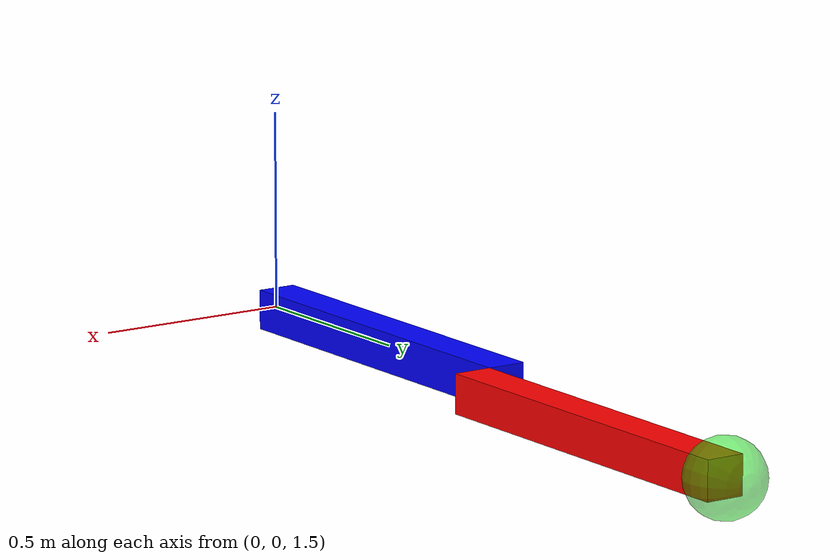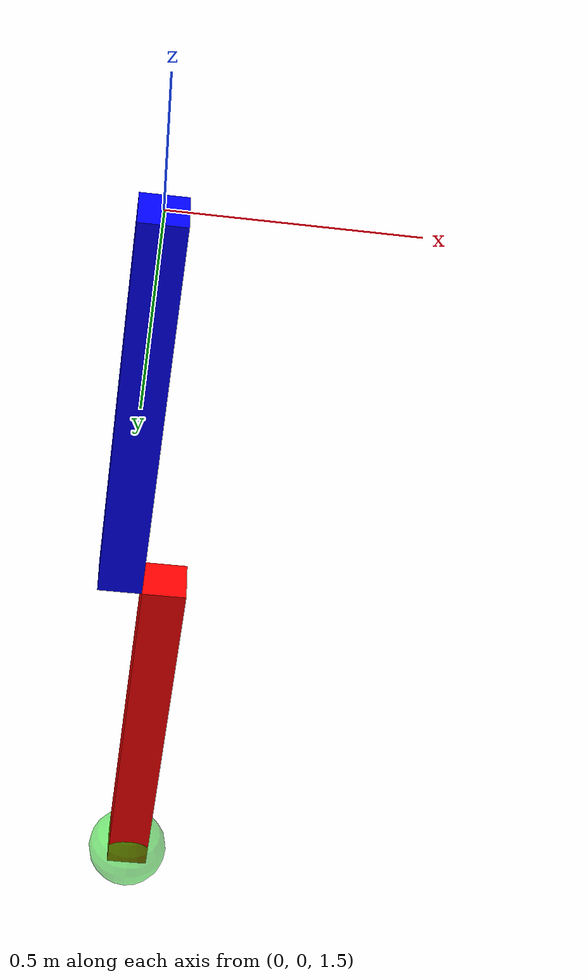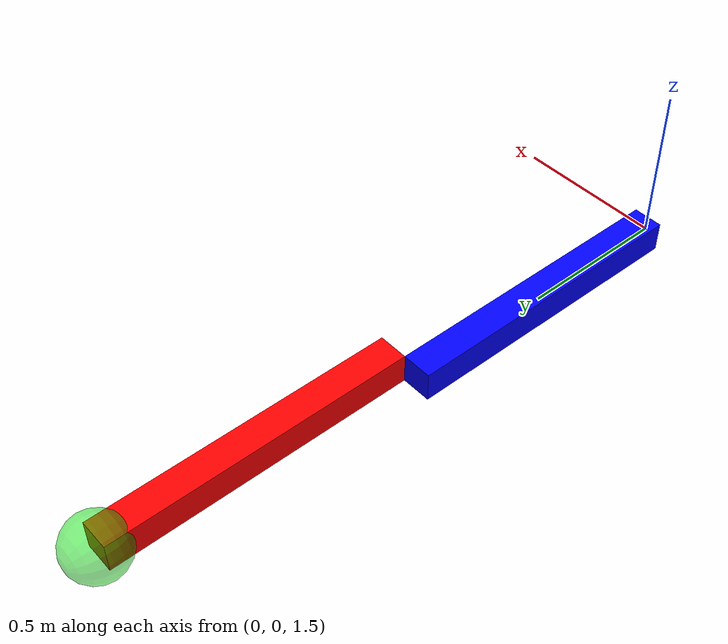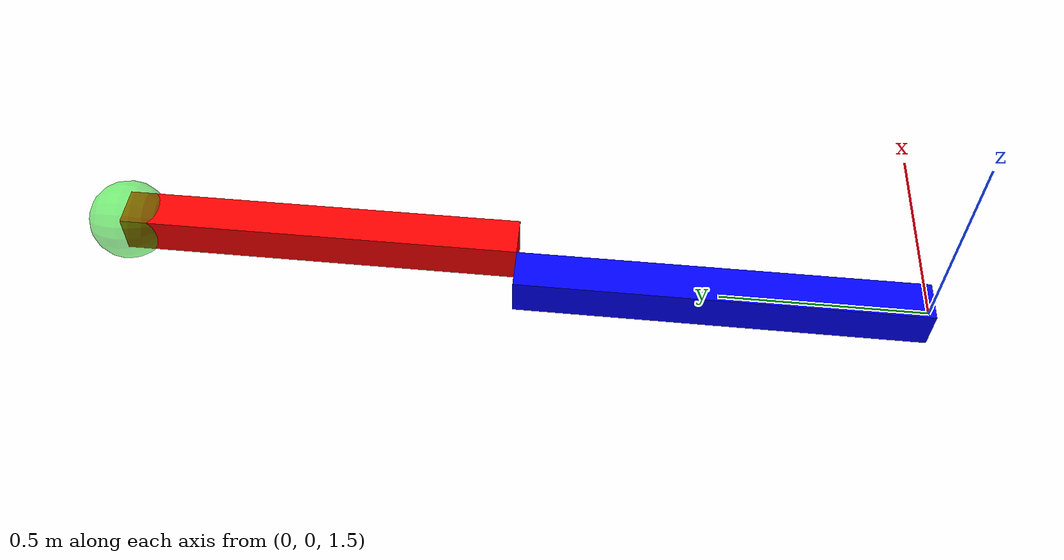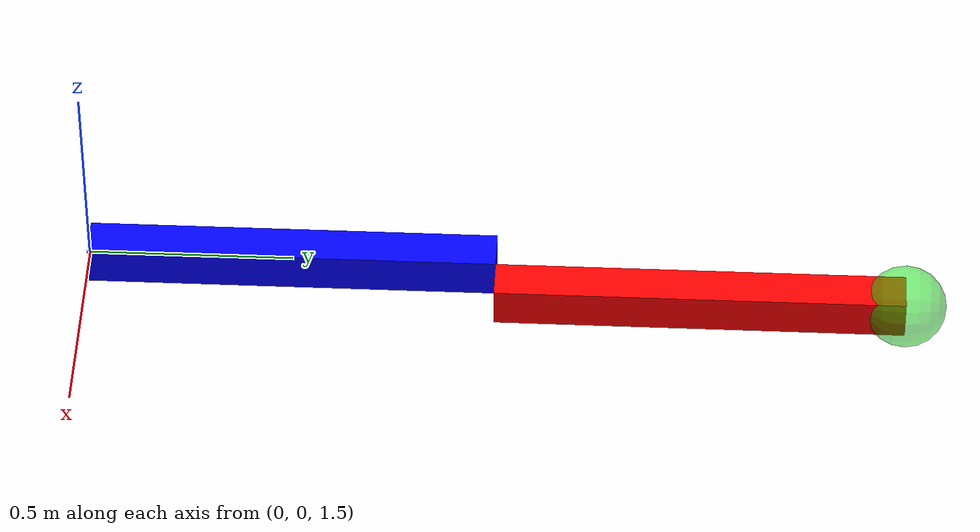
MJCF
<mujoco model="double_pendulum">
  <compiler angle="radian" />

  <option integrator="implicitfast" timestep="0.002"/>

  <asset>
    <material name="black" rgba="0.0 0.0 0.0 1.0" />
    <material name="blue" rgba="0.0 0.0 1.0 1.0" />
    <material name="red" rgba="1.0 0.0 0.0 1.0" />
  </asset>

  <worldbody>
    <body name="base_link" pos="0 0 0">
      <body name="link1" pos="0 0.5 1.5" euler="-1.5708 0 0">
        <inertial pos="0 0 0" euler="0 0 0" mass="1.0" diaginertia="0.03 0.04 0.05"/>
        <geom type="box" size="0.05 0.05 0.5" material="blue"/>
        <joint name="joint1" type="hinge" pos="0 0 -0.5" axis="1 0 0"/>

        <body name="link2" pos="0.1 0 1.0">
          <inertial pos="0 0 0" euler="0 0 0" mass="1.0" diaginertia="0.07 0.06 0.08"/>
          <geom type="box" size="0.05 0.05 0.5" material="red"/>
          <joint name="joint2" type="hinge" pos="0 0 -0.5" axis="1 0 0"/>
          <site name ="ee_site" type="sphere" pos="0 0 0.5" size="0.1" rgba="0 0.9 0 0.5" />
        </body>
      </body>
    </body>
  </worldbody>

  <actuator>
    <motor joint="joint1" name="motor1" gear="1"/>
    <motor joint="joint2" name="motor2" gear="1"/>
  </actuator>

  <keyframe>
    <key name="home" qpos="-0.7854 1.5708" ctrl="0 0"/>
  </keyframe>
</mujoco>
